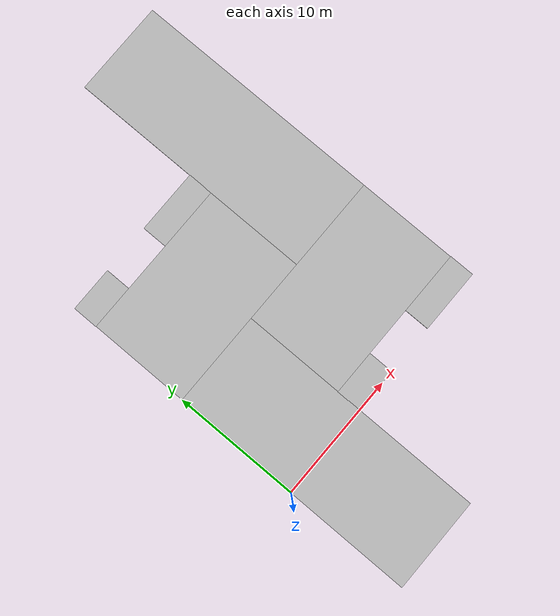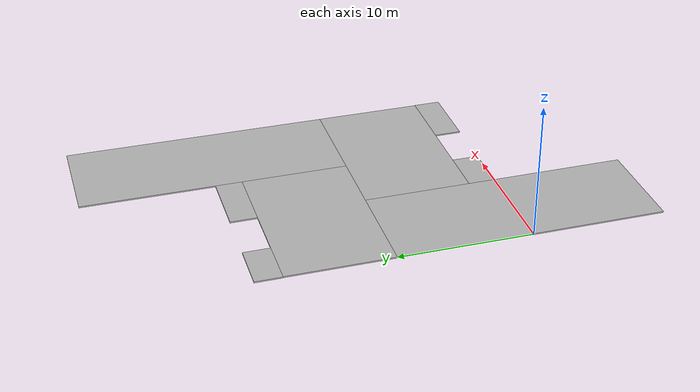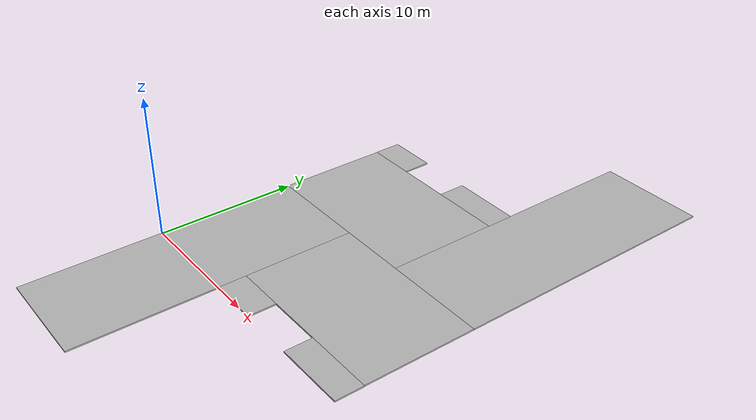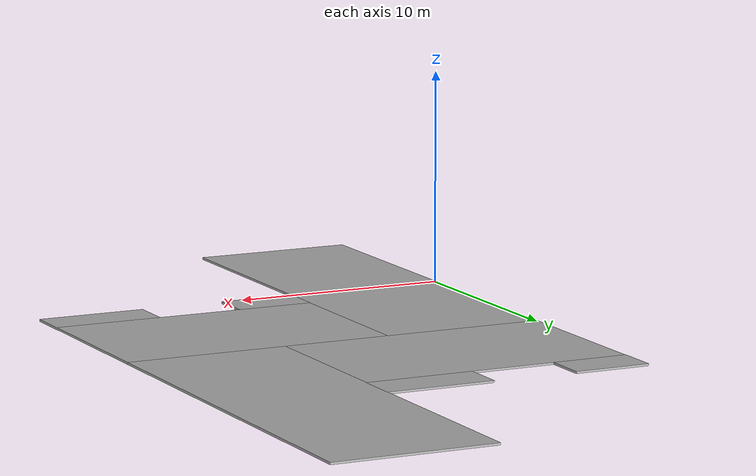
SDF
<?xml version="1.0" ?>
<sdf version="1.4">
    <model name="multi_room_floor">
      <pose>0.0 0.0 0 0 0 0</pose>
      <static>true</static>
      <link name="lr_room">
        <visual name="box_visual">
          <pose>3.75 0 0 0 0 0</pose>
          <geometry>
          <mesh>
            <uri>model://gazebo_worlds_cdt/models/multi_room_floor/meshes/wall_box.dae</uri>
            <scale>7.5 20 0.1</scale>
          </mesh>
          </geometry>
        </visual>
        <collision name="box_collision">
          <pose>3.75 0 0 0 0 0</pose>
          <geometry>
            <box>
              <size>7.5 20 0.1</size>
            </box>
          </geometry>
        </collision>
      </link>

      <link name="ul_room">
        <visual name="box_visual">
          <pose>16.25 20 0 0 0 0</pose>
          <geometry>
          <mesh>
            <uri>model://gazebo_worlds_cdt/models/multi_room_floor/meshes/wall_box.dae</uri>
            <scale>7.5 20 0.1</scale>
          </mesh>
          </geometry>
        </visual>
        <collision name="box_collision">
          <pose>16.25 20 0 0 0 0</pose>
          <geometry>
            <box>
              <size>7.5 20 0.1</size>
            </box>
          </geometry>
        </collision>
      </link>

      <link name="ur_room">
        <visual name="box_visual">
          <pose>13.75 6 0 0 0 0</pose>
          <geometry>
          <mesh>
            <uri>model://gazebo_worlds_cdt/models/multi_room_floor/meshes/wall_box.dae</uri>
            <scale>12.5 8 0.1</scale>
          </mesh>
          </geometry>
        </visual>
        <collision name="box_collision">
          <pose>13.75 6 0 0 0 0</pose>
          <geometry>
            <box>
              <size>12.5 8 0.1</size>
            </box>
          </geometry>
        </collision>
      </link>

      <link name="lr_slot_lower">
        <visual name="box_visual">
          <pose>9.25 1 0 0 0 0</pose>
          <geometry>
          <mesh>
            <uri>model://gazebo_worlds_cdt/models/multi_room_floor/meshes/wall_box.dae</uri>
            <scale>3.55 2 0.1</scale>
          </mesh>
          </geometry>
        </visual>
        <collision name="box_collision">
          <pose>9.25 1 0 0 0 0</pose>
          <geometry>
            <box>
              <size>3.55 2 0.1</size>
            </box>
          </geometry>
        </collision>
      </link>

      <link name="lr_slot_upper">
        <visual name="box_visual">
          <pose>17.5 1 0 0 0 0</pose>
          <geometry>
          <mesh>
            <uri>model://gazebo_worlds_cdt/models/multi_room_floor/meshes/wall_box.dae</uri>
            <scale>5.05 2 0.1</scale>
          </mesh>
          </geometry>
        </visual>
        <collision name="box_collision">
          <pose>17.5 1 0 0 0 0</pose>
          <geometry>
            <box>
              <size>5.05 2 0.1</size>
            </box>
          </geometry>
        </collision>
      </link>

      <link name="ll_room">
        <visual name="box_visual">
          <pose>6.25 14 0 0 0 0</pose>
          <geometry>
          <mesh>
            <uri>model://gazebo_worlds_cdt/models/multi_room_floor/meshes/wall_box.dae</uri>
            <scale>12.5 8 0.1</scale>
          </mesh>
          </geometry>
        </visual>
        <collision name="box_collision">
          <pose>6.25 14 0 0 0 0</pose>
          <geometry>
            <box>
              <size>12.25 8 0.1</size>
            </box>
          </geometry>
        </collision>
      </link>

      <link name="ur_slot_lower">
        <visual name="box_visual">
          <pose>1.75 19 0 0 0 0</pose>
          <geometry>
          <mesh>
            <uri>model://gazebo_worlds_cdt/models/multi_room_floor/meshes/wall_box.dae</uri>
            <scale>3.55 2 0.1</scale>
          </mesh>
          </geometry>
        </visual>
        <collision name="box_collision">
          <pose>1.75 19 0 0 0 0</pose>
          <geometry>
            <box>
              <size>3.55 2 0.1</size>
            </box>
          </geometry>
        </collision>
      </link>

      <link name="ur_slot_upper">
        <visual name="box_visual">
          <pose>10 19 0 0 0 0</pose>
          <geometry>
          <mesh>
            <uri>model://gazebo_worlds_cdt/models/multi_room_floor/meshes/wall_box.dae</uri>
            <scale>5.05 2 0.1</scale>
          </mesh>
          </geometry>
        </visual>
        <collision name="box_collision">
          <pose>10 19 0 0 0 0</pose>
          <geometry>
            <box>
              <size>5.05 2 0.1</size>
            </box>
          </geometry>
        </collision>
      </link>

    </model>
</sdf>
